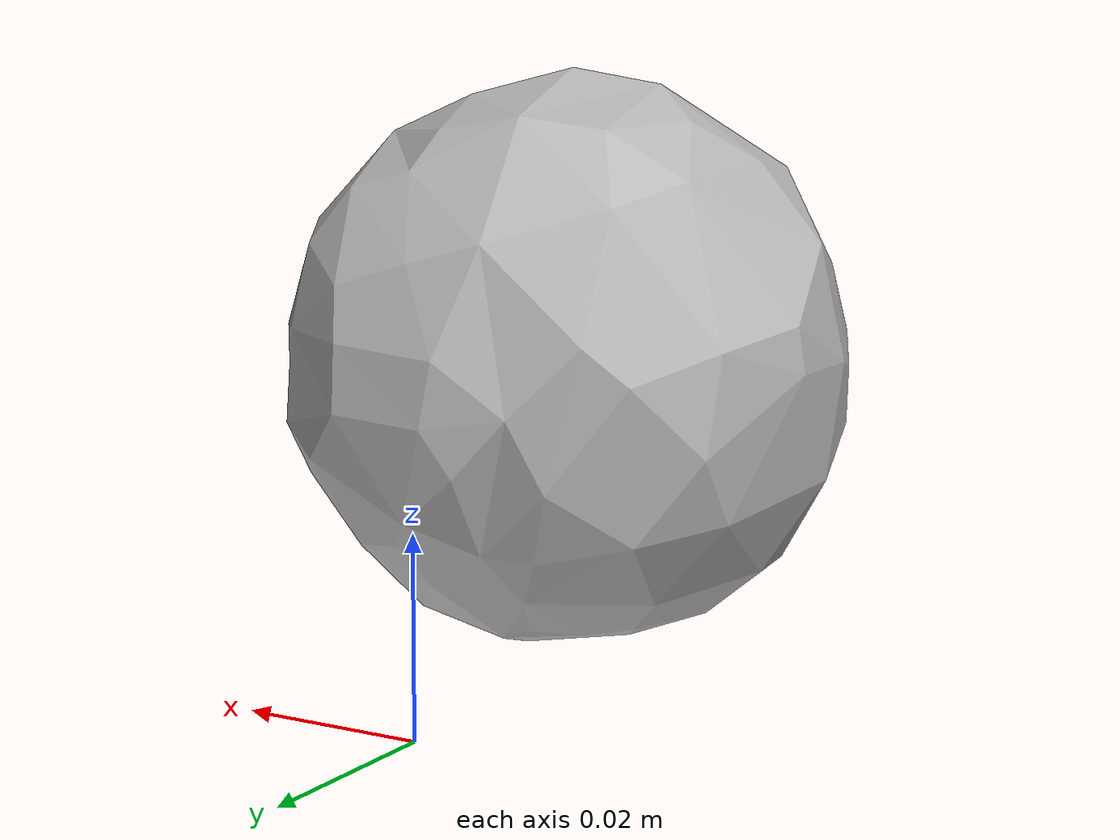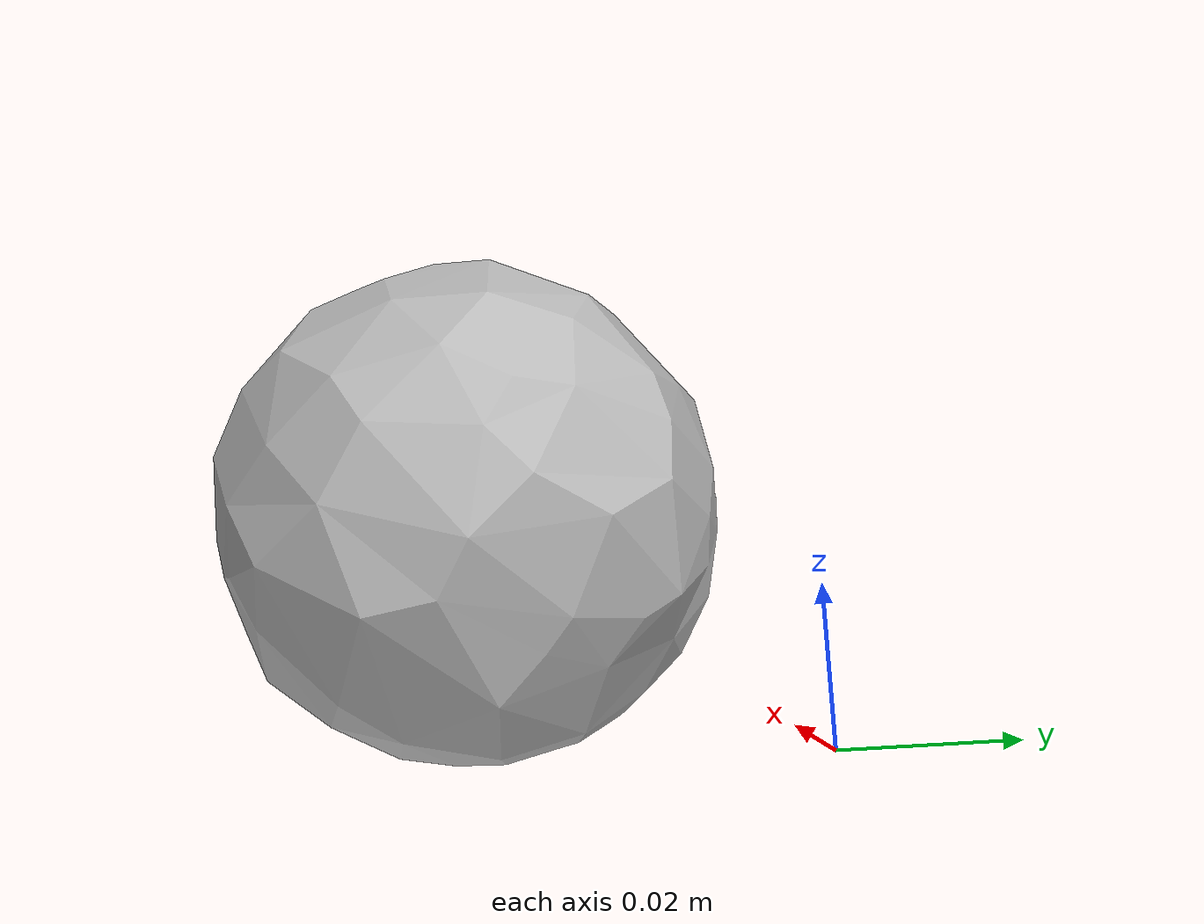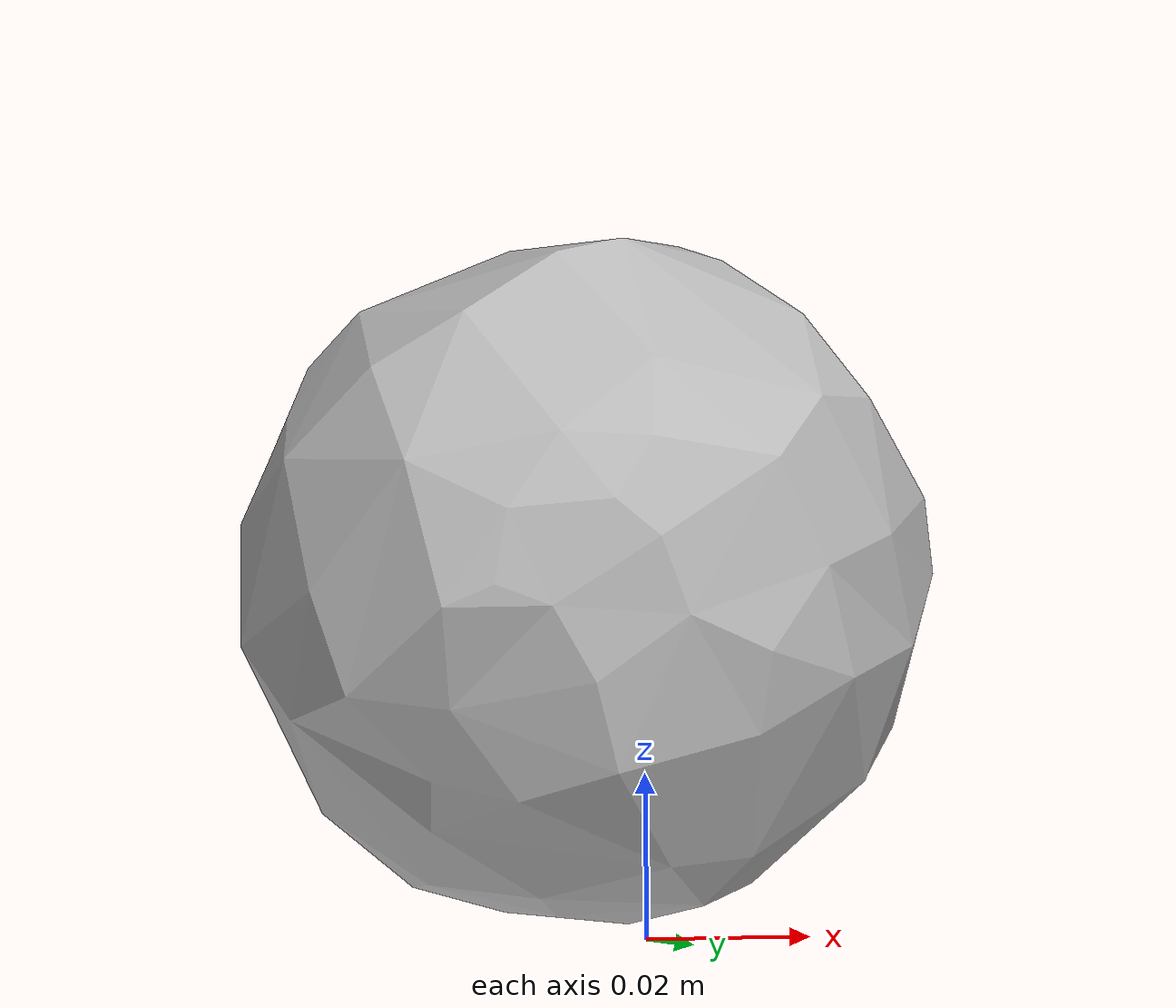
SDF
<?xml version='1.0'?>
<sdf version="1.4">
  <model name="056_tennis_ball">
    <static>false</static>
    <link name="link">
      <inertial>
        <pose>0.008237606646305778 -0.044201396960901966 0.03288507794121162 0.4054578030332558 -1.0198938063257865 -2.802556715241955</pose>
        <mass>0.01567506050914253</mass>
        <inertia>
          <ixx>7.037505680046138e-06</ixx>
          <ixy>1.1684013586109682e-21</ixy>
          <ixz>-1.7190446114901372e-21</ixz>
          <iyy>7.009011791030713e-06</iyy>
          <iyz>6.28917929371098e-22</iyz>
          <izz>6.999767682417702e-06</izz>
        </inertia>
      </inertial>
      <collision name="collision">
        <geometry>
          <mesh>
            <!-- Use a downsampled mesh for collisions -->
            <uri>model:///056_tennis_ball/056_tennis_ball_250_collision.stl</uri>
	        </mesh>
        </geometry>
        <surface>
      </surface>
      </collision>
      <visual name="visual">
        <geometry>
          <mesh>
            <uri>model:///056_tennis_ball/textured.obj</uri>
	        </mesh>
        </geometry>
        <material>
          <script>
            <uri>model:///056_tennis_ball/056_tennis_ball.material</uri>
            <name>056_tennis_ball</name>
          </script>
        </material>
      </visual>
    </link>
  </model>
</sdf>
